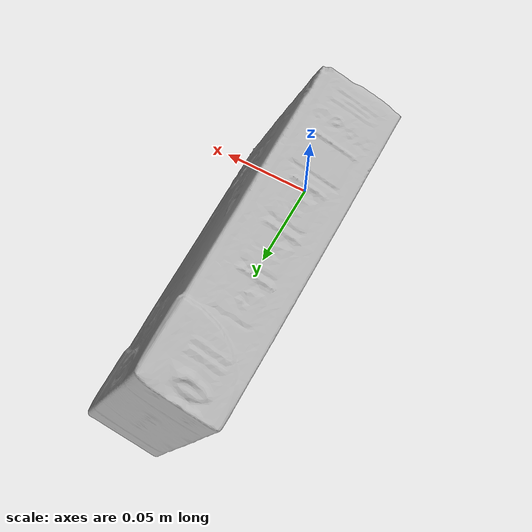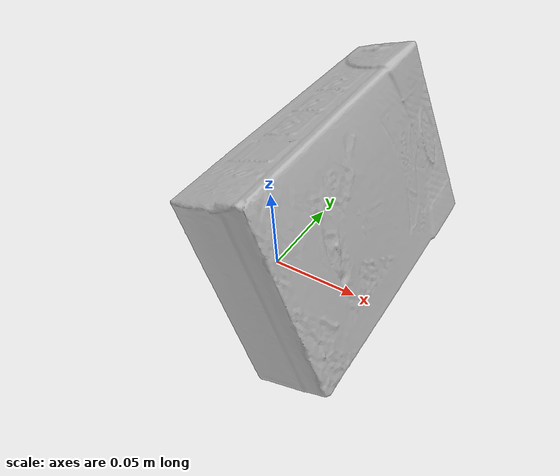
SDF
<?xml version='1.0'?>
<sdf version="1.4">
  <model name="CoffeeFilters">
    <static>false</static>
    <link name="link">
      <inertial>
        <pose>0.00857963878212079 0.06260085180861698 0.0019338095048927492 1.585778678278465 0.33613149181832386 -3.1317075679687107</pose>
        <mass>0.13757520618215088</mass>
        <inertia>
          <ixx>0.0006495689049727828</ixx>
          <ixy>2.3751366660312064e-20</ixy>
          <ixz>6.613203063184869e-20</ixz>
          <iyy>0.0004745737024213648</iyy>
          <iyz>-1.755740323628111e-19</iyz>
          <izz>0.00023510085157765827</izz>
        </inertia>
      </inertial>
      <collision name="collision">
        <geometry>
          <mesh>
            <!-- Use a downsampled mesh for collisions -->
            <uri>model:///CoffeeFilters/CoffeeFilters_250_collision.obj</uri>
	        </mesh>
        </geometry>
        <surface>
      </surface>
      </collision>
      <visual name="visual">
        <geometry>
          <mesh>
            <uri>model:///CoffeeFilters/CoffeeFilters_25k_tex.obj</uri>
	        </mesh>
        </geometry>
        <material>
          <script>
            <uri>model:///CoffeeFilters/CoffeeFilters.material</uri>
            <name>CoffeeFilters</name>
          </script>
        </material>
      </visual>
    </link>
  </model>
</sdf>
